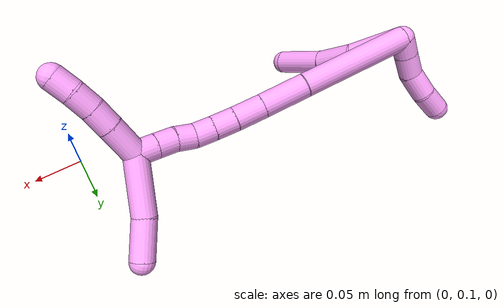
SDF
<sdf version="1.7">
 <world name="default">
  <model name="4">
   <static>0</static>
   <link name="4">
    <collision name="collision-cylinder-e_1_2_8">
     <pose>-0.003989 0.01712 -0.020996 -2.45752 -0.146211 0.405745</pose>
     <geometry><cylinder><radius>0.0125</radius><length>0.054766</length></cylinder></geometry>
     <surface>
      <friction><ode><mu>1.16</mu><mu2>1.16</mu2><slip1>0</slip1><slip2>0</slip2></ode></friction>
      <contact><ode><kp>1e+06</kp><kd>1</kd><max_vel>0</max_vel><min_depth>0.001</min_depth></ode></contact>
     </surface>
    </collision>
    <visual name="visual-cylinder-e_1_2_8">
     <pose>-0.003989 0.01712 -0.020996 -2.45752 -0.146211 0.405745</pose>
     <geometry><cylinder><radius>0.0125</radius><length>0.054766</length></cylinder></geometry>
     <material><ambient>1 0.65098 0.996078 1</ambient></material>
    </visual>
    <collision name="collision-cylinder-e_2_8_9">
     <pose>-0.017264 0.045181 -0.055808 -2.47184 -0.484898 1.23576</pose>
     <geometry><cylinder><radius>0.0125</radius><length>0.039839</length></cylinder></geometry>
     <surface>
      <friction><ode><mu>1.16</mu><mu2>1.16</mu2><slip1>0</slip1><slip2>0</slip2></ode></friction>
      <contact><ode><kp>1e+06</kp><kd>1</kd><max_vel>0</max_vel><min_depth>0.001</min_depth></ode></contact>
     </surface>
    </collision>
    <visual name="visual-cylinder-e_2_8_9">
     <pose>-0.017264 0.045181 -0.055808 -2.47184 -0.484898 1.23576</pose>
     <geometry><cylinder><radius>0.0125</radius><length>0.039839</length></cylinder></geometry>
     <material><ambient>1 0.65098 0.996078 1</ambient></material>
    </visual>
    <collision name="collision-cylinder-e_3_9_6">
     <pose>-0.041725 0.06691 -0.090128 -2.65725 -0.579875 1.75847</pose>
     <geometry><cylinder><radius>0.0125</radius><length>0.055395</length></cylinder></geometry>
     <surface>
      <friction><ode><mu>1.16</mu><mu2>1.16</mu2><slip1>0</slip1><slip2>0</slip2></ode></friction>
      <contact><ode><kp>1e+06</kp><kd>1</kd><max_vel>0</max_vel><min_depth>0.001</min_depth></ode></contact>
     </surface>
    </collision>
    <visual name="visual-cylinder-e_3_9_6">
     <pose>-0.041725 0.06691 -0.090128 -2.65725 -0.579875 1.75847</pose>
     <geometry><cylinder><radius>0.0125</radius><length>0.055395</length></cylinder></geometry>
     <material><ambient>1 0.65098 0.996078 1</ambient></material>
    </visual>
    <collision name="collision-cylinder-e_1_2_10">
     <pose>-0.002871 0.008143 0.005512 -0.975773 -0.284049 0.15147</pose>
     <geometry><cylinder><radius>0.0125</radius><length>0.020487</length></cylinder></geometry>
     <surface>
      <friction><ode><mu>1.16</mu><mu2>1.16</mu2><slip1>0</slip1><slip2>0</slip2></ode></friction>
      <contact><ode><kp>1e+06</kp><kd>1</kd><max_vel>0</max_vel><min_depth>0.001</min_depth></ode></contact>
     </surface>
    </collision>
    <visual name="visual-cylinder-e_1_2_10">
     <pose>-0.002871 0.008143 0.005512 -0.975773 -0.284049 0.15147</pose>
     <geometry><cylinder><radius>0.0125</radius><length>0.020487</length></cylinder></geometry>
     <material><ambient>1 0.65098 0.996078 1</ambient></material>
    </visual>
    <collision name="collision-cylinder-e_2_10_11">
     <pose>-0.00827 0.026213 0.017973 -0.960051 -0.205741 0.107394</pose>
     <geometry><cylinder><radius>0.0125</radius><length>0.024758</length></cylinder></geometry>
     <surface>
      <friction><ode><mu>1.16</mu><mu2>1.16</mu2><slip1>0</slip1><slip2>0</slip2></ode></friction>
      <contact><ode><kp>1e+06</kp><kd>1</kd><max_vel>0</max_vel><min_depth>0.001</min_depth></ode></contact>
     </surface>
    </collision>
    <visual name="visual-cylinder-e_2_10_11">
     <pose>-0.00827 0.026213 0.017973 -0.960051 -0.205741 0.107394</pose>
     <geometry><cylinder><radius>0.0125</radius><length>0.024758</length></cylinder></geometry>
     <material><ambient>1 0.65098 0.996078 1</ambient></material>
    </visual>
    <collision name="collision-cylinder-e_3_11_12">
     <pose>-0.011808 0.04476 0.035801 -0.670016 -0.072543 0.025264</pose>
     <geometry><cylinder><radius>0.0125</radius><length>0.027832</length></cylinder></geometry>
     <surface>
      <friction><ode><mu>1.16</mu><mu2>1.16</mu2><slip1>0</slip1><slip2>0</slip2></ode></friction>
      <contact><ode><kp>1e+06</kp><kd>1</kd><max_vel>0</max_vel><min_depth>0.001</min_depth></ode></contact>
     </surface>
    </collision>
    <visual name="visual-cylinder-e_3_11_12">
     <pose>-0.011808 0.04476 0.035801 -0.670016 -0.072543 0.025264</pose>
     <geometry><cylinder><radius>0.0125</radius><length>0.027832</length></cylinder></geometry>
     <material><ambient>1 0.65098 0.996078 1</ambient></material>
    </visual>
    <collision name="collision-cylinder-e_4_12_5">
     <pose>-0.016364 0.060576 0.057489 -0.587425 -0.266659 0.081091</pose>
     <geometry><cylinder><radius>0.0125</radius><length>0.026923</length></cylinder></geometry>
     <surface>
      <friction><ode><mu>1.16</mu><mu2>1.16</mu2><slip1>0</slip1><slip2>0</slip2></ode></friction>
      <contact><ode><kp>1e+06</kp><kd>1</kd><max_vel>0</max_vel><min_depth>0.001</min_depth></ode></contact>
     </surface>
    </collision>
    <visual name="visual-cylinder-e_4_12_5">
     <pose>-0.016364 0.060576 0.057489 -0.587425 -0.266659 0.081091</pose>
     <geometry><cylinder><radius>0.0125</radius><length>0.026923</length></cylinder></geometry>
     <material><ambient>1 0.65098 0.996078 1</ambient></material>
    </visual>
    <collision name="collision-cylinder-e_1_2_13">
     <pose>0.026459 0.031276 -0.041968 -2.50115 0.468047 -1.24651</pose>
     <geometry><cylinder><radius>0.0125</radius><length>0.117295</length></cylinder></geometry>
     <surface>
      <friction><ode><mu>1.16</mu><mu2>1.16</mu2><slip1>0</slip1><slip2>0</slip2></ode></friction>
      <contact><ode><kp>1e+06</kp><kd>1</kd><max_vel>0</max_vel><min_depth>0.001</min_depth></ode></contact>
     </surface>
    </collision>
    <visual name="visual-cylinder-e_1_2_13">
     <pose>0.026459 0.031276 -0.041968 -2.50115 0.468047 -1.24651</pose>
     <geometry><cylinder><radius>0.0125</radius><length>0.117295</length></cylinder></geometry>
     <material><ambient>1 0.65098 0.996078 1</ambient></material>
    </visual>
    <collision name="collision-cylinder-e_2_13_14">
     <pose>0.062256 0.076203 -0.101265 -2.47435 0.40046 -1.0595</pose>
     <geometry><cylinder><radius>0.0125</radius><length>0.04791</length></cylinder></geometry>
     <surface>
      <friction><ode><mu>1.16</mu><mu2>1.16</mu2><slip1>0</slip1><slip2>0</slip2></ode></friction>
      <contact><ode><kp>1e+06</kp><kd>1</kd><max_vel>0</max_vel><min_depth>0.001</min_depth></ode></contact>
     </surface>
    </collision>
    <visual name="visual-cylinder-e_2_13_14">
     <pose>0.062256 0.076203 -0.101265 -2.47435 0.40046 -1.0595</pose>
     <geometry><cylinder><radius>0.0125</radius><length>0.04791</length></cylinder></geometry>
     <material><ambient>1 0.65098 0.996078 1</ambient></material>
    </visual>
    <collision name="collision-cylinder-e_3_14_15">
     <pose>0.078878 0.097733 -0.129677 -2.52361 0.491749 -1.33249</pose>
     <geometry><cylinder><radius>0.0125</radius><length>0.030853</length></cylinder></geometry>
     <surface>
      <friction><ode><mu>1.16</mu><mu2>1.16</mu2><slip1>0</slip1><slip2>0</slip2></ode></friction>
      <contact><ode><kp>1e+06</kp><kd>1</kd><max_vel>0</max_vel><min_depth>0.001</min_depth></ode></contact>
     </surface>
    </collision>
    <visual name="visual-cylinder-e_3_14_15">
     <pose>0.078878 0.097733 -0.129677 -2.52361 0.491749 -1.33249</pose>
     <geometry><cylinder><radius>0.0125</radius><length>0.030853</length></cylinder></geometry>
     <material><ambient>1 0.65098 0.996078 1</ambient></material>
    </visual>
    <collision name="collision-cylinder-e_4_15_16">
     <pose>0.091312 0.111293 -0.149336 -2.55644 0.464149 -1.33054</pose>
     <geometry><cylinder><radius>0.0125</radius><length>0.023008</length></cylinder></geometry>
     <surface>
      <friction><ode><mu>1.16</mu><mu2>1.16</mu2><slip1>0</slip1><slip2>0</slip2></ode></friction>
      <contact><ode><kp>1e+06</kp><kd>1</kd><max_vel>0</max_vel><min_depth>0.001</min_depth></ode></contact>
     </surface>
    </collision>
    <visual name="visual-cylinder-e_4_15_16">
     <pose>0.091312 0.111293 -0.149336 -2.55644 0.464149 -1.33054</pose>
     <geometry><cylinder><radius>0.0125</radius><length>0.023008</length></cylinder></geometry>
     <material><ambient>1 0.65098 0.996078 1</ambient></material>
    </visual>
    <collision name="collision-cylinder-e_5_16_17">
     <pose>0.101346 0.12172 -0.165735 -2.59639 0.490301 -1.45999</pose>
     <geometry><cylinder><radius>0.0125</radius><length>0.020745</length></cylinder></geometry>
     <surface>
      <friction><ode><mu>1.16</mu><mu2>1.16</mu2><slip1>0</slip1><slip2>0</slip2></ode></friction>
      <contact><ode><kp>1e+06</kp><kd>1</kd><max_vel>0</max_vel><min_depth>0.001</min_depth></ode></contact>
     </surface>
    </collision>
    <visual name="visual-cylinder-e_5_16_17">
     <pose>0.101346 0.12172 -0.165735 -2.59639 0.490301 -1.45999</pose>
     <geometry><cylinder><radius>0.0125</radius><length>0.020745</length></cylinder></geometry>
     <material><ambient>1 0.65098 0.996078 1</ambient></material>
    </visual>
    <collision name="collision-cylinder-e_6_17_18">
     <pose>0.111976 0.128301 -0.181547 -2.91576 0.611373 -2.45166</pose>
     <geometry><cylinder><radius>0.0125</radius><length>0.020021</length></cylinder></geometry>
     <surface>
      <friction><ode><mu>1.16</mu><mu2>1.16</mu2><slip1>0</slip1><slip2>0</slip2></ode></friction>
      <contact><ode><kp>1e+06</kp><kd>1</kd><max_vel>0</max_vel><min_depth>0.001</min_depth></ode></contact>
     </surface>
    </collision>
    <visual name="visual-cylinder-e_6_17_18">
     <pose>0.111976 0.128301 -0.181547 -2.91576 0.611373 -2.45166</pose>
     <geometry><cylinder><radius>0.0125</radius><length>0.020021</length></cylinder></geometry>
     <material><ambient>1 0.65098 0.996078 1</ambient></material>
    </visual>
    <collision name="collision-cylinder-e_7_18_19">
     <pose>0.124344 0.13314 -0.196432 -2.7308 0.721864 -2.13294</pose>
     <geometry><cylinder><radius>0.0125</radius><length>0.020043</length></cylinder></geometry>
     <surface>
      <friction><ode><mu>1.16</mu><mu2>1.16</mu2><slip1>0</slip1><slip2>0</slip2></ode></friction>
      <contact><ode><kp>1e+06</kp><kd>1</kd><max_vel>0</max_vel><min_depth>0.001</min_depth></ode></contact>
     </surface>
    </collision>
    <visual name="visual-cylinder-e_7_18_19">
     <pose>0.124344 0.13314 -0.196432 -2.7308 0.721864 -2.13294</pose>
     <geometry><cylinder><radius>0.0125</radius><length>0.020043</length></cylinder></geometry>
     <material><ambient>1 0.65098 0.996078 1</ambient></material>
    </visual>
    <collision name="collision-cylinder-e_8_19_1">
     <pose>0.137556 0.139241 -0.210274 -2.72217 0.71404 -2.10453</pose>
     <geometry><cylinder><radius>0.0125</radius><length>0.020126</length></cylinder></geometry>
     <surface>
      <friction><ode><mu>1.16</mu><mu2>1.16</mu2><slip1>0</slip1><slip2>0</slip2></ode></friction>
      <contact><ode><kp>1e+06</kp><kd>1</kd><max_vel>0</max_vel><min_depth>0.001</min_depth></ode></contact>
     </surface>
    </collision>
    <visual name="visual-cylinder-e_8_19_1">
     <pose>0.137556 0.139241 -0.210274 -2.72217 0.71404 -2.10453</pose>
     <geometry><cylinder><radius>0.0125</radius><length>0.020126</length></cylinder></geometry>
     <material><ambient>1 0.65098 0.996078 1</ambient></material>
    </visual>
    <collision name="collision-cylinder-e_1_1_20">
     <pose>0.15441 0.167401 -0.205027 -1.11803 0.352833 -0.222125</pose>
     <geometry><cylinder><radius>0.0125</radius><length>0.059402</length></cylinder></geometry>
     <surface>
      <friction><ode><mu>1.16</mu><mu2>1.16</mu2><slip1>0</slip1><slip2>0</slip2></ode></friction>
      <contact><ode><kp>1e+06</kp><kd>1</kd><max_vel>0</max_vel><min_depth>0.001</min_depth></ode></contact>
     </surface>
    </collision>
    <visual name="visual-cylinder-e_1_1_20">
     <pose>0.15441 0.167401 -0.205027 -1.11803 0.352833 -0.222125</pose>
     <geometry><cylinder><radius>0.0125</radius><length>0.059402</length></cylinder></geometry>
     <material><ambient>1 0.65098 0.996078 1</ambient></material>
    </visual>
    <collision name="collision-cylinder-e_2_20_4">
     <pose>0.173776 0.209855 -0.187664 -1.28182 0.464994 -0.349649</pose>
     <geometry><cylinder><radius>0.0125</radius><length>0.040598</length></cylinder></geometry>
     <surface>
      <friction><ode><mu>1.16</mu><mu2>1.16</mu2><slip1>0</slip1><slip2>0</slip2></ode></friction>
      <contact><ode><kp>1e+06</kp><kd>1</kd><max_vel>0</max_vel><min_depth>0.001</min_depth></ode></contact>
     </surface>
    </collision>
    <visual name="visual-cylinder-e_2_20_4">
     <pose>0.173776 0.209855 -0.187664 -1.28182 0.464994 -0.349649</pose>
     <geometry><cylinder><radius>0.0125</radius><length>0.040598</length></cylinder></geometry>
     <material><ambient>1 0.65098 0.996078 1</ambient></material>
    </visual>
    <collision name="collision-cylinder-e_1_1_21">
     <pose>0.147812 0.130789 -0.229912 2.40331 0.210459 0.533023</pose>
     <geometry><cylinder><radius>0.0125</radius><length>0.035095</length></cylinder></geometry>
     <surface>
      <friction><ode><mu>1.16</mu><mu2>1.16</mu2><slip1>0</slip1><slip2>0</slip2></ode></friction>
      <contact><ode><kp>1e+06</kp><kd>1</kd><max_vel>0</max_vel><min_depth>0.001</min_depth></ode></contact>
     </surface>
    </collision>
    <visual name="visual-cylinder-e_1_1_21">
     <pose>0.147812 0.130789 -0.229912 2.40331 0.210459 0.533023</pose>
     <geometry><cylinder><radius>0.0125</radius><length>0.035095</length></cylinder></geometry>
     <material><ambient>1 0.65098 0.996078 1</ambient></material>
    </visual>
    <collision name="collision-cylinder-e_2_21_22">
     <pose>0.153375 0.112215 -0.251047 2.44763 0.171053 0.46559</pose>
     <geometry><cylinder><radius>0.0125</radius><length>0.022291</length></cylinder></geometry>
     <surface>
      <friction><ode><mu>1.16</mu><mu2>1.16</mu2><slip1>0</slip1><slip2>0</slip2></ode></friction>
      <contact><ode><kp>1e+06</kp><kd>1</kd><max_vel>0</max_vel><min_depth>0.001</min_depth></ode></contact>
     </surface>
    </collision>
    <visual name="visual-cylinder-e_2_21_22">
     <pose>0.153375 0.112215 -0.251047 2.44763 0.171053 0.46559</pose>
     <geometry><cylinder><radius>0.0125</radius><length>0.022291</length></cylinder></geometry>
     <material><ambient>1 0.65098 0.996078 1</ambient></material>
    </visual>
    <collision name="collision-cylinder-e_3_22_23">
     <pose>0.157564 0.099169 -0.268253 2.53963 0.212298 0.661297</pose>
     <geometry><cylinder><radius>0.0125</radius><length>0.021753</length></cylinder></geometry>
     <surface>
      <friction><ode><mu>1.16</mu><mu2>1.16</mu2><slip1>0</slip1><slip2>0</slip2></ode></friction>
      <contact><ode><kp>1e+06</kp><kd>1</kd><max_vel>0</max_vel><min_depth>0.001</min_depth></ode></contact>
     </surface>
    </collision>
    <visual name="visual-cylinder-e_3_22_23">
     <pose>0.157564 0.099169 -0.268253 2.53963 0.212298 0.661297</pose>
     <geometry><cylinder><radius>0.0125</radius><length>0.021753</length></cylinder></geometry>
     <material><ambient>1 0.65098 0.996078 1</ambient></material>
    </visual>
    <collision name="collision-cylinder-e_4_23_3">
     <pose>0.161124 0.088478 -0.286256 2.6735 0.121895 0.501146</pose>
     <geometry><cylinder><radius>0.0125</radius><length>0.02086</length></cylinder></geometry>
     <surface>
      <friction><ode><mu>1.16</mu><mu2>1.16</mu2><slip1>0</slip1><slip2>0</slip2></ode></friction>
      <contact><ode><kp>1e+06</kp><kd>1</kd><max_vel>0</max_vel><min_depth>0.001</min_depth></ode></contact>
     </surface>
    </collision>
    <visual name="visual-cylinder-e_4_23_3">
     <pose>0.161124 0.088478 -0.286256 2.6735 0.121895 0.501146</pose>
     <geometry><cylinder><radius>0.0125</radius><length>0.02086</length></cylinder></geometry>
     <material><ambient>1 0.65098 0.996078 1</ambient></material>
    </visual>
    <collision name="collision-sphere-3">
     <pose>0.162392 0.083807 -0.295495 0 -0 0</pose>
     <geometry><sphere><radius>0.0125</radius></sphere></geometry>
     <surface>
      <friction><ode><mu>1.16</mu><mu2>1.16</mu2><slip1>0</slip1><slip2>0</slip2></ode></friction>
      <contact><ode><kp>1e+06</kp><kd>1</kd><max_vel>0</max_vel><min_depth>0.001</min_depth></ode></contact>
     </surface>
    </collision>
    <visual name="visual-sphere-3">
     <pose>0.162392 0.083807 -0.295495 0 -0 0</pose>
     <geometry><sphere><radius>0.0125</radius></sphere></geometry>
     <material><ambient>1 0.65098 0.996078 1</ambient></material>
    </visual>
    <collision name="collision-sphere-23">
     <pose>0.159856 0.093149 -0.277017 0 -0 0</pose>
     <geometry><sphere><radius>0.0125</radius></sphere></geometry>
     <surface>
      <friction><ode><mu>1.16</mu><mu2>1.16</mu2><slip1>0</slip1><slip2>0</slip2></ode></friction>
      <contact><ode><kp>1e+06</kp><kd>1</kd><max_vel>0</max_vel><min_depth>0.001</min_depth></ode></contact>
     </surface>
    </collision>
    <visual name="visual-sphere-23">
     <pose>0.159856 0.093149 -0.277017 0 -0 0</pose>
     <geometry><sphere><radius>0.0125</radius></sphere></geometry>
     <material><ambient>1 0.65098 0.996078 1</ambient></material>
    </visual>
    <collision name="collision-sphere-22">
     <pose>0.155273 0.10519 -0.25949 0 -0 0</pose>
     <geometry><sphere><radius>0.0125</radius></sphere></geometry>
     <surface>
      <friction><ode><mu>1.16</mu><mu2>1.16</mu2><slip1>0</slip1><slip2>0</slip2></ode></friction>
      <contact><ode><kp>1e+06</kp><kd>1</kd><max_vel>0</max_vel><min_depth>0.001</min_depth></ode></contact>
     </surface>
    </collision>
    <visual name="visual-sphere-22">
     <pose>0.155273 0.10519 -0.25949 0 -0 0</pose>
     <geometry><sphere><radius>0.0125</radius></sphere></geometry>
     <material><ambient>1 0.65098 0.996078 1</ambient></material>
    </visual>
    <collision name="collision-sphere-21">
     <pose>0.151478 0.119239 -0.242604 0 -0 0</pose>
     <geometry><sphere><radius>0.0125</radius></sphere></geometry>
     <surface>
      <friction><ode><mu>1.16</mu><mu2>1.16</mu2><slip1>0</slip1><slip2>0</slip2></ode></friction>
      <contact><ode><kp>1e+06</kp><kd>1</kd><max_vel>0</max_vel><min_depth>0.001</min_depth></ode></contact>
     </surface>
    </collision>
    <visual name="visual-sphere-21">
     <pose>0.151478 0.119239 -0.242604 0 -0 0</pose>
     <geometry><sphere><radius>0.0125</radius></sphere></geometry>
     <material><ambient>1 0.65098 0.996078 1</ambient></material>
    </visual>
    <collision name="collision-sphere-4">
     <pose>0.182878 0.227247 -0.182494 0 -0 0</pose>
     <geometry><sphere><radius>0.0125</radius></sphere></geometry>
     <surface>
      <friction><ode><mu>1.16</mu><mu2>1.16</mu2><slip1>0</slip1><slip2>0</slip2></ode></friction>
      <contact><ode><kp>1e+06</kp><kd>1</kd><max_vel>0</max_vel><min_depth>0.001</min_depth></ode></contact>
     </surface>
    </collision>
    <visual name="visual-sphere-4">
     <pose>0.182878 0.227247 -0.182494 0 -0 0</pose>
     <geometry><sphere><radius>0.0125</radius></sphere></geometry>
     <material><ambient>1 0.65098 0.996078 1</ambient></material>
    </visual>
    <collision name="collision-sphere-20">
     <pose>0.164673 0.192464 -0.192835 0 -0 0</pose>
     <geometry><sphere><radius>0.0125</radius></sphere></geometry>
     <surface>
      <friction><ode><mu>1.16</mu><mu2>1.16</mu2><slip1>0</slip1><slip2>0</slip2></ode></friction>
      <contact><ode><kp>1e+06</kp><kd>1</kd><max_vel>0</max_vel><min_depth>0.001</min_depth></ode></contact>
     </surface>
    </collision>
    <visual name="visual-sphere-20">
     <pose>0.164673 0.192464 -0.192835 0 -0 0</pose>
     <geometry><sphere><radius>0.0125</radius></sphere></geometry>
     <material><ambient>1 0.65098 0.996078 1</ambient></material>
    </visual>
    <collision name="collision-sphere-11">
     <pose>-0.010799 0.036141 0.024922 0 -0 0</pose>
     <geometry><sphere><radius>0.0125</radius></sphere></geometry>
     <surface>
      <friction><ode><mu>1.16</mu><mu2>1.16</mu2><slip1>0</slip1><slip2>0</slip2></ode></friction>
      <contact><ode><kp>1e+06</kp><kd>1</kd><max_vel>0</max_vel><min_depth>0.001</min_depth></ode></contact>
     </surface>
    </collision>
    <visual name="visual-sphere-11">
     <pose>-0.010799 0.036141 0.024922 0 -0 0</pose>
     <geometry><sphere><radius>0.0125</radius></sphere></geometry>
     <material><ambient>1 0.65098 0.996078 1</ambient></material>
    </visual>
    <collision name="collision-sphere-10">
     <pose>-0.005741 0.016286 0.011023 0 -0 0</pose>
     <geometry><sphere><radius>0.0125</radius></sphere></geometry>
     <surface>
      <friction><ode><mu>1.16</mu><mu2>1.16</mu2><slip1>0</slip1><slip2>0</slip2></ode></friction>
      <contact><ode><kp>1e+06</kp><kd>1</kd><max_vel>0</max_vel><min_depth>0.001</min_depth></ode></contact>
     </surface>
    </collision>
    <visual name="visual-sphere-10">
     <pose>-0.005741 0.016286 0.011023 0 -0 0</pose>
     <geometry><sphere><radius>0.0125</radius></sphere></geometry>
     <material><ambient>1 0.65098 0.996078 1</ambient></material>
    </visual>
    <collision name="collision-sphere-6">
     <pose>-0.0569 0.077698 -0.110633 0 -0 0</pose>
     <geometry><sphere><radius>0.0125</radius></sphere></geometry>
     <surface>
      <friction><ode><mu>1.16</mu><mu2>1.16</mu2><slip1>0</slip1><slip2>0</slip2></ode></friction>
      <contact><ode><kp>1e+06</kp><kd>1</kd><max_vel>0</max_vel><min_depth>0.001</min_depth></ode></contact>
     </surface>
    </collision>
    <visual name="visual-sphere-6">
     <pose>-0.0569 0.077698 -0.110633 0 -0 0</pose>
     <geometry><sphere><radius>0.0125</radius></sphere></geometry>
     <material><ambient>1 0.65098 0.996078 1</ambient></material>
    </visual>
    <collision name="collision-sphere-9">
     <pose>-0.026549 0.056121 -0.069624 0 -0 0</pose>
     <geometry><sphere><radius>0.0125</radius></sphere></geometry>
     <surface>
      <friction><ode><mu>1.16</mu><mu2>1.16</mu2><slip1>0</slip1><slip2>0</slip2></ode></friction>
      <contact><ode><kp>1e+06</kp><kd>1</kd><max_vel>0</max_vel><min_depth>0.001</min_depth></ode></contact>
     </surface>
    </collision>
    <visual name="visual-sphere-9">
     <pose>-0.026549 0.056121 -0.069624 0 -0 0</pose>
     <geometry><sphere><radius>0.0125</radius></sphere></geometry>
     <material><ambient>1 0.65098 0.996078 1</ambient></material>
    </visual>
    <collision name="collision-sphere-2">
     <geometry><sphere><radius>0.0125</radius></sphere></geometry>
     <surface>
      <friction><ode><mu>1.16</mu><mu2>1.16</mu2><slip1>0</slip1><slip2>0</slip2></ode></friction>
      <contact><ode><kp>1e+06</kp><kd>1</kd><max_vel>0</max_vel><min_depth>0.001</min_depth></ode></contact>
     </surface>
    </collision>
    <visual name="visual-sphere-2">
     <geometry><sphere><radius>0.0125</radius></sphere></geometry>
     <material><ambient>1 0.65098 0.996078 1</ambient></material>
    </visual>
    <collision name="collision-sphere-19">
     <pose>0.130966 0.136144 -0.203329 0 -0 0</pose>
     <geometry><sphere><radius>0.0125</radius></sphere></geometry>
     <surface>
      <friction><ode><mu>1.16</mu><mu2>1.16</mu2><slip1>0</slip1><slip2>0</slip2></ode></friction>
      <contact><ode><kp>1e+06</kp><kd>1</kd><max_vel>0</max_vel><min_depth>0.001</min_depth></ode></contact>
     </surface>
    </collision>
    <visual name="visual-sphere-19">
     <pose>0.130966 0.136144 -0.203329 0 -0 0</pose>
     <geometry><sphere><radius>0.0125</radius></sphere></geometry>
     <material><ambient>1 0.65098 0.996078 1</ambient></material>
    </visual>
    <collision name="collision-sphere-8">
     <pose>-0.007979 0.03424 -0.041991 0 -0 0</pose>
     <geometry><sphere><radius>0.0125</radius></sphere></geometry>
     <surface>
      <friction><ode><mu>1.16</mu><mu2>1.16</mu2><slip1>0</slip1><slip2>0</slip2></ode></friction>
      <contact><ode><kp>1e+06</kp><kd>1</kd><max_vel>0</max_vel><min_depth>0.001</min_depth></ode></contact>
     </surface>
    </collision>
    <visual name="visual-sphere-8">
     <pose>-0.007979 0.03424 -0.041991 0 -0 0</pose>
     <geometry><sphere><radius>0.0125</radius></sphere></geometry>
     <material><ambient>1 0.65098 0.996078 1</ambient></material>
    </visual>
    <collision name="collision-sphere-12">
     <pose>-0.012816 0.053379 0.04668 0 -0 0</pose>
     <geometry><sphere><radius>0.0125</radius></sphere></geometry>
     <surface>
      <friction><ode><mu>1.16</mu><mu2>1.16</mu2><slip1>0</slip1><slip2>0</slip2></ode></friction>
      <contact><ode><kp>1e+06</kp><kd>1</kd><max_vel>0</max_vel><min_depth>0.001</min_depth></ode></contact>
     </surface>
    </collision>
    <visual name="visual-sphere-12">
     <pose>-0.012816 0.053379 0.04668 0 -0 0</pose>
     <geometry><sphere><radius>0.0125</radius></sphere></geometry>
     <material><ambient>1 0.65098 0.996078 1</ambient></material>
    </visual>
    <collision name="collision-sphere-5">
     <pose>-0.019911 0.067773 0.068298 0 -0 0</pose>
     <geometry><sphere><radius>0.0125</radius></sphere></geometry>
     <surface>
      <friction><ode><mu>1.16</mu><mu2>1.16</mu2><slip1>0</slip1><slip2>0</slip2></ode></friction>
      <contact><ode><kp>1e+06</kp><kd>1</kd><max_vel>0</max_vel><min_depth>0.001</min_depth></ode></contact>
     </surface>
    </collision>
    <visual name="visual-sphere-5">
     <pose>-0.019911 0.067773 0.068298 0 -0 0</pose>
     <geometry><sphere><radius>0.0125</radius></sphere></geometry>
     <material><ambient>1 0.65098 0.996078 1</ambient></material>
    </visual>
    <collision name="collision-sphere-13">
     <pose>0.052917 0.062552 -0.083936 0 -0 0</pose>
     <geometry><sphere><radius>0.0125</radius></sphere></geometry>
     <surface>
      <friction><ode><mu>1.16</mu><mu2>1.16</mu2><slip1>0</slip1><slip2>0</slip2></ode></friction>
      <contact><ode><kp>1e+06</kp><kd>1</kd><max_vel>0</max_vel><min_depth>0.001</min_depth></ode></contact>
     </surface>
    </collision>
    <visual name="visual-sphere-13">
     <pose>0.052917 0.062552 -0.083936 0 -0 0</pose>
     <geometry><sphere><radius>0.0125</radius></sphere></geometry>
     <material><ambient>1 0.65098 0.996078 1</ambient></material>
    </visual>
    <collision name="collision-sphere-14">
     <pose>0.071594 0.089854 -0.118593 0 -0 0</pose>
     <geometry><sphere><radius>0.0125</radius></sphere></geometry>
     <surface>
      <friction><ode><mu>1.16</mu><mu2>1.16</mu2><slip1>0</slip1><slip2>0</slip2></ode></friction>
      <contact><ode><kp>1e+06</kp><kd>1</kd><max_vel>0</max_vel><min_depth>0.001</min_depth></ode></contact>
     </surface>
    </collision>
    <visual name="visual-sphere-14">
     <pose>0.071594 0.089854 -0.118593 0 -0 0</pose>
     <geometry><sphere><radius>0.0125</radius></sphere></geometry>
     <material><ambient>1 0.65098 0.996078 1</ambient></material>
    </visual>
    <collision name="collision-sphere-15">
     <pose>0.086162 0.105612 -0.14076 0 -0 0</pose>
     <geometry><sphere><radius>0.0125</radius></sphere></geometry>
     <surface>
      <friction><ode><mu>1.16</mu><mu2>1.16</mu2><slip1>0</slip1><slip2>0</slip2></ode></friction>
      <contact><ode><kp>1e+06</kp><kd>1</kd><max_vel>0</max_vel><min_depth>0.001</min_depth></ode></contact>
     </surface>
    </collision>
    <visual name="visual-sphere-15">
     <pose>0.086162 0.105612 -0.14076 0 -0 0</pose>
     <geometry><sphere><radius>0.0125</radius></sphere></geometry>
     <material><ambient>1 0.65098 0.996078 1</ambient></material>
    </visual>
    <collision name="collision-sphere-16">
     <pose>0.096462 0.116975 -0.157911 0 -0 0</pose>
     <geometry><sphere><radius>0.0125</radius></sphere></geometry>
     <surface>
      <friction><ode><mu>1.16</mu><mu2>1.16</mu2><slip1>0</slip1><slip2>0</slip2></ode></friction>
      <contact><ode><kp>1e+06</kp><kd>1</kd><max_vel>0</max_vel><min_depth>0.001</min_depth></ode></contact>
     </surface>
    </collision>
    <visual name="visual-sphere-16">
     <pose>0.096462 0.116975 -0.157911 0 -0 0</pose>
     <geometry><sphere><radius>0.0125</radius></sphere></geometry>
     <material><ambient>1 0.65098 0.996078 1</ambient></material>
    </visual>
    <collision name="collision-sphere-17">
     <pose>0.10623 0.126466 -0.173558 0 -0 0</pose>
     <geometry><sphere><radius>0.0125</radius></sphere></geometry>
     <surface>
      <friction><ode><mu>1.16</mu><mu2>1.16</mu2><slip1>0</slip1><slip2>0</slip2></ode></friction>
      <contact><ode><kp>1e+06</kp><kd>1</kd><max_vel>0</max_vel><min_depth>0.001</min_depth></ode></contact>
     </surface>
    </collision>
    <visual name="visual-sphere-17">
     <pose>0.10623 0.126466 -0.173558 0 -0 0</pose>
     <geometry><sphere><radius>0.0125</radius></sphere></geometry>
     <material><ambient>1 0.65098 0.996078 1</ambient></material>
    </visual>
    <collision name="collision-sphere-18">
     <pose>0.117722 0.130137 -0.189536 0 -0 0</pose>
     <geometry><sphere><radius>0.0125</radius></sphere></geometry>
     <surface>
      <friction><ode><mu>1.16</mu><mu2>1.16</mu2><slip1>0</slip1><slip2>0</slip2></ode></friction>
      <contact><ode><kp>1e+06</kp><kd>1</kd><max_vel>0</max_vel><min_depth>0.001</min_depth></ode></contact>
     </surface>
    </collision>
    <visual name="visual-sphere-18">
     <pose>0.117722 0.130137 -0.189536 0 -0 0</pose>
     <geometry><sphere><radius>0.0125</radius></sphere></geometry>
     <material><ambient>1 0.65098 0.996078 1</ambient></material>
    </visual>
    <collision name="collision-sphere-1">
     <pose>0.144146 0.142338 -0.21722 0 -0 0</pose>
     <geometry><sphere><radius>0.0125</radius></sphere></geometry>
     <surface>
      <friction><ode><mu>1.16</mu><mu2>1.16</mu2><slip1>0</slip1><slip2>0</slip2></ode></friction>
      <contact><ode><kp>1e+06</kp><kd>1</kd><max_vel>0</max_vel><min_depth>0.001</min_depth></ode></contact>
     </surface>
    </collision>
    <visual name="visual-sphere-1">
     <pose>0.144146 0.142338 -0.21722 0 -0 0</pose>
     <geometry><sphere><radius>0.0125</radius></sphere></geometry>
     <material><ambient>1 0.65098 0.996078 1</ambient></material>
    </visual>
    <inertial>
     <pose>0.063463 0.084206 -0.110648 0 -0 0</pose>
     <mass>0.75</mass>
     <inertia>
      <ixx>-2e-06</ixx>
      <ixy>0</ixy>
      <ixz>0</ixz>
      <iyy>-7.4e-05</iyy>
      <iyz>0</iyz>
      <izz>-0.000221</izz>
     </inertia>
    </inertial>
   </link>
   <pose>-0.342389 0.188388 0.089783 -1.74444 -0.520612 0.87854</pose>
  </model>
 </world>
</sdf>
